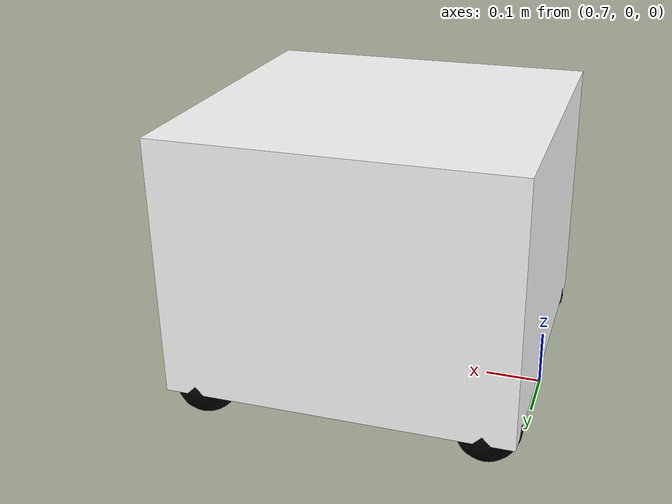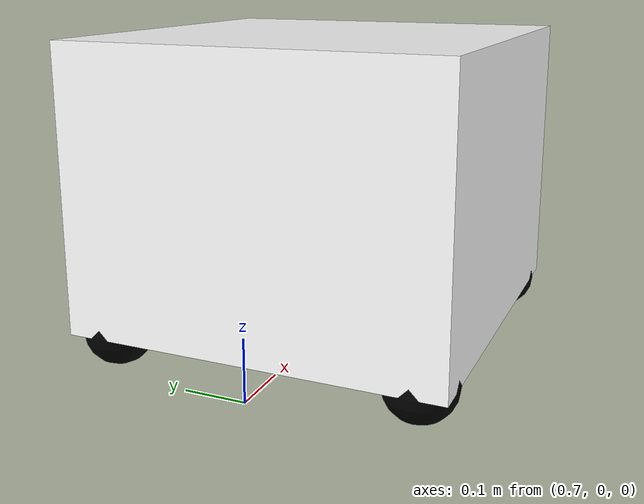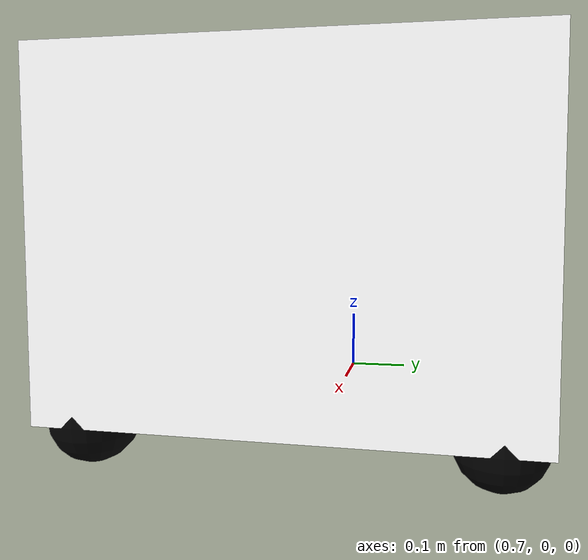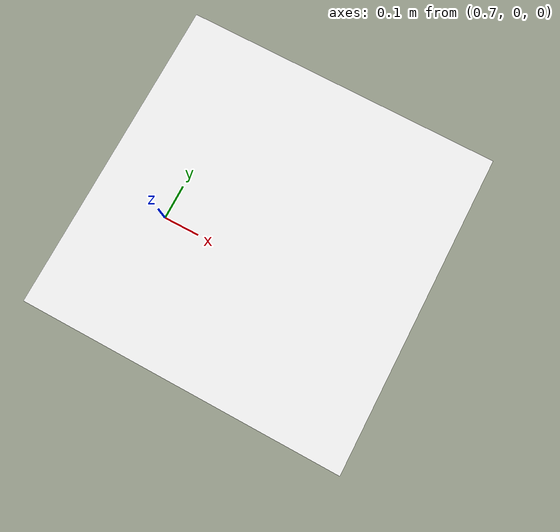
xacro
<?xml version="1.0"?>
<robot xmlns:xacro="http://www.ros.org/wiki/xacro"  name="cart_prototype">

    <xacro:include filename="inertial_macros.xacro"/>

    <material name="white">
        <color rgba="1 1 1 1" />
    </material>

    <material name="orange">
        <color rgba="1 0.3 0.1 1"/>
    </material>

    <material name="blue">
        <color rgba="0.2 0.2 1 1"/>
    </material>

    <material name="black">
        <color rgba="0 0 0 1"/>
    </material>

    <material name="red">
        <color rgba="1 0 0 1"/>
    </material>

    <xacro:property name="body_height" value="0.4572" />
    <xacro:property name="body_width" value="0.6096" />
    <xacro:property name="body_length" value="0.6096" />
    <xacro:property name="body_off_ground" value="0.05715" />
    <xacro:property name="wheel_separation" value="0.5" />
    <xacro:property name="wheel_radius" value="${body_off_ground}" />

    <link name="base_link"></link>

    <joint name="body_joint" type="fixed">
        <origin xyz="1.0 0.0 ${body_off_ground}"/>
        <parent link="base_link"/>
        <child link="body_link"/>
    </joint>

    <link name="body_link">
        <visual>
            <origin xyz="0.0 0.0 ${body_height/2}"/>
            <geometry>
                <box size="${body_length} ${body_width} ${body_height}"/>
            </geometry>
            <material name="white"/>
        </visual>

        <collision>
            <origin xyz="0.0 0.0 ${body_height/2}" rpy="0.0 0.0 0.0"/>
            <geometry>
                <box size="${body_length} ${body_width} ${body_height}"/>
            </geometry>
        </collision>
        <xacro:inertial_box mass="1.15" x="${body_length}" y="${body_width}" z="${body_height}">
            <origin xyz="0.0 0.0 ${body_height/2}" rpy="0 0 0"/>
        </xacro:inertial_box>
    </link>

    <!-- wheels -->
    <joint name="left_back_joint" type="fixed">
        <parent link="body_link"/>
        <child link="left_back_link"/>
        <origin xyz="${wheel_separation/2} ${wheel_separation/2} 0"/>
        <dynamics friction="0.0"/>
    </joint>

    <link name="left_back_link">
        <visual>
            <geometry>
                <sphere radius="${wheel_radius}"/>
            </geometry>
            <material name="black"/>
        </visual>

        <collision>
            <geometry>
                <sphere radius="${wheel_radius}"/>
            </geometry>
        </collision>
        <xacro:inertial_sphere mass="0.05" radius="${wheel_radius}">
            <origin xyz="0 0 0" rpy="0 0 0"/>
        </xacro:inertial_sphere>
    </link>

    <joint name="right_back_joint" type="fixed">
        <parent link="body_link"/>
        <child link="right_back_link"/>
        <origin xyz="-${wheel_separation/2} -${wheel_separation/2} 0"/>
        <dynamics friction="0.0"/>
    </joint>

    <link name="right_back_link">
        <visual>
            <geometry>
                <sphere radius="${wheel_radius}"/>
            </geometry>
            <material name="black"/>
        </visual>

        <collision>
            <geometry>
                <sphere radius="${wheel_radius}"/>
            </geometry>
        </collision>
        <xacro:inertial_sphere mass="0.05" radius="${wheel_radius}">
            <origin xyz="0 0 0" rpy="0 0 0"/>
        </xacro:inertial_sphere>
    </link>

    <joint name="left_front_joint" type="fixed">
        <parent link="body_link"/>
        <child link="left_front_link"/>
        <origin xyz="-${wheel_separation/2} ${wheel_separation/2} 0"/>
        <dynamics friction="0.0"/>
    </joint>

    <link name="left_front_link">
        <visual>
            <geometry>
                <sphere radius="${wheel_radius}"/>
            </geometry>
            <material name="black"/>
        </visual>

        <collision>
            <geometry>
                <sphere radius="${wheel_radius}"/>
            </geometry>
        </collision>
        <xacro:inertial_sphere mass="0.05" radius="${wheel_radius}">
            <origin xyz="0 0 0" rpy="0 0 0"/>
        </xacro:inertial_sphere>
    </link>

    <joint name="right_front_joint" type="fixed">
        <parent link="body_link"/>
        <child link="right_front_link"/>
        <origin xyz="${wheel_separation/2} -${wheel_separation/2} 0"/>
        <dynamics friction="0.0"/>
    </joint>

    <link name="right_front_link">
        <visual>
            <geometry>
                <sphere radius="${wheel_radius}"/>
            </geometry>
            <material name="black"/>
        </visual>

        <collision>
            <geometry>
                <sphere radius="${wheel_radius}"/>
            </geometry>
        </collision>
        <xacro:inertial_sphere mass="0.05" radius="${wheel_radius}">
            <origin xyz="0 0 0" rpy="0 0 0"/>
        </xacro:inertial_sphere>
    </link>
</robot>
